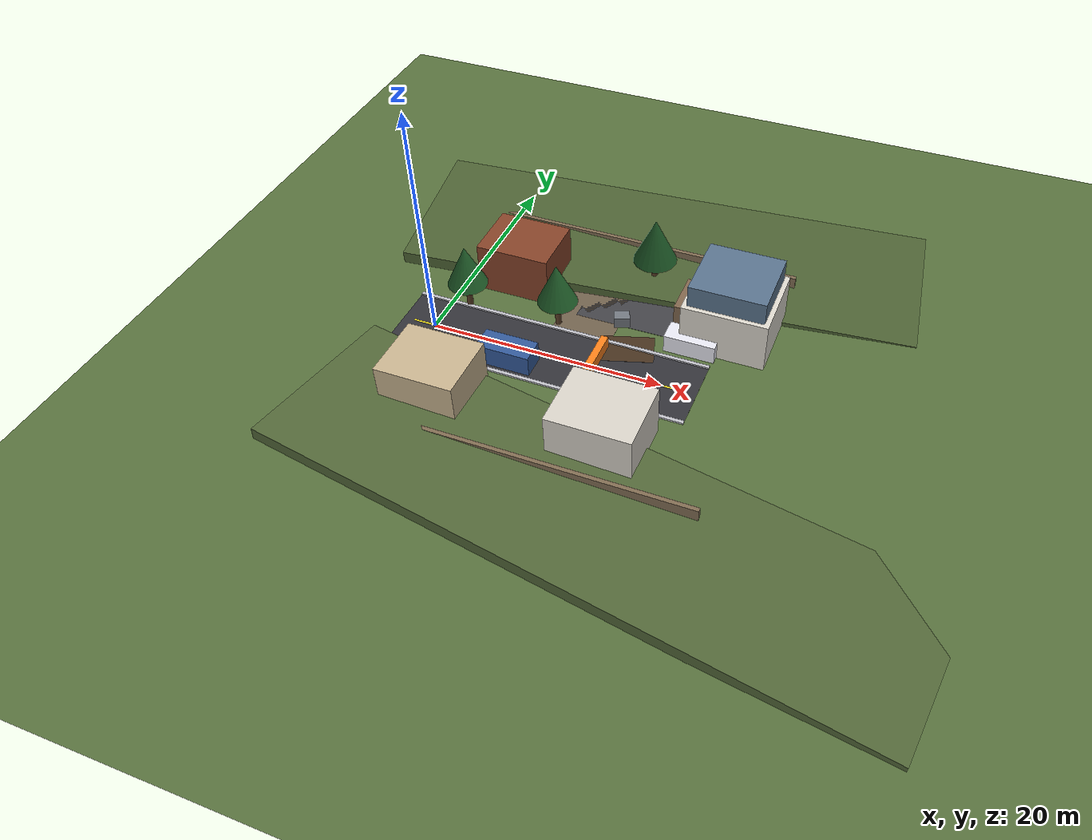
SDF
<sdf version="1.8">
 <world name="real_digital_twin_world">
  <physics name="1ms" type="ode">
   <max_step_size>0.004</max_step_size>
   <real_time_factor>1.0</real_time_factor>
   <real_time_update_rate>250</real_time_update_rate>
   <ode>
    <solver><type>quick</type><iters>60</iters><sor>1.3</sor></solver>
    <constraints>
     <cfm>0.00001</cfm>
     <erp>0.2</erp>
     <contact_max_correcting_vel>100.0</contact_max_correcting_vel>
     <contact_surface_layer>0.001</contact_surface_layer>
    </constraints>
   </ode>
  </physics>
  <plugin filename="gz-sim-physics-system" name="gz::sim::systems::Physics"/>
  <plugin filename="gz-sim-user-commands-system" name="gz::sim::systems::UserCommands"/>
  <plugin filename="gz-sim-scene-broadcaster-system" name="gz::sim::systems::SceneBroadcaster"/>
  <plugin filename="gz-sim-sensors-system" name="gz::sim::systems::Sensors">
   <render_engine>ogre</render_engine>
  </plugin>
  <plugin filename="gz-sim-imu-system" name="gz::sim::systems::Imu"/>
  <scene>
   <ambient>0.65 0.70 0.75 1.0</ambient>
   <background>0.55 0.75 0.92 1.0</background>
   <shadows>true</shadows>
   <grid>false</grid>
  </scene>
  <light type="directional" name="sun">
   <pose>25 35 60 0 0.75 0.55</pose>
   <diffuse>0.98 0.95 0.88 1.0</diffuse>
   <specular>0.45 0.45 0.45 1.0</specular>
   <direction>-0.5 0.3 -0.9</direction>
  </light>
  <model name="base_terrain_500m">
   <static>true</static>
   <link name="link">
    <collision name="col">
     <geometry><plane><normal>0 0 1</normal><size>500 500</size></plane></geometry>
     <surface><friction><ode><mu>0.55</mu><mu2>0.45</mu2></ode></friction></surface>
    </collision>
    <visual name="vis">
     <geometry><plane><normal>0 0 1</normal><size>500 500</size></plane></geometry>
     <material><ambient>0.30 0.38 0.20 1.0</ambient><diffuse>0.34 0.44 0.24 1.0</diffuse></material>
    </visual>
   </link>
  </model>
  <model name="elevation_hill_north">
   <static>true</static>
   <pose>15.0 16.0 0.55 0.06 0.03 0.12</pose>
   <link name="link">
    <collision name="col">
     <geometry><box><size>45.0 14.0 1.1</size></box></geometry>
     <surface><friction><ode><mu>0.50</mu><mu2>0.40</mu2></ode></friction></surface>
    </collision>
    <visual name="vis">
     <geometry><box><size>45.0 14.0 1.1</size></box></geometry>
     <material><ambient>0.26 0.34 0.18 1.0</ambient><diffuse>0.30 0.38 0.20 1.0</diffuse></material>
    </visual>
   </link>
  </model>
  <model name="elevation_ridge_south">
   <static>true</static>
   <pose>20.0 -14.0 0.50 -0.05 0.04 -0.15</pose>
   <link name="link">
    <collision name="col">
     <geometry><box><size>50.0 14.0 1.0</size></box></geometry>
     <surface><friction><ode><mu>0.50</mu><mu2>0.40</mu2></ode></friction></surface>
    </collision>
    <visual name="vis">
     <geometry><box><size>50.0 14.0 1.0</size></box></geometry>
     <material><ambient>0.28 0.36 0.20 1.0</ambient><diffuse>0.32 0.40 0.22 1.0</diffuse></material>
    </visual>
   </link>
  </model>
  <model name="mud_patch_offroad">
   <static>true</static>
   <pose>16.0 3.0 0.015 0 0 0.3</pose>
   <link name="link">
    <collision name="col">
     <geometry><box><size>4.5 3.0 0.03</size></box></geometry>
     <surface><friction><ode><mu>0.35</mu><mu2>0.25</mu2></ode></friction></surface>
    </collision>
    <visual name="vis">
     <geometry><box><size>4.5 3.0 0.03</size></box></geometry>
     <material><ambient>0.22 0.16 0.10 1.0</ambient><diffuse>0.28 0.20 0.12 1.0</diffuse></material>
    </visual>
   </link>
  </model>
  <model name="main_asphalt_road">
   <static>true</static>
   <pose>10.0 0.0 0.01 0 0 0</pose>
   <link name="link">
    <collision name="col">
     <geometry><box><size>26.0 6.2 0.02</size></box></geometry>
     <surface><friction><ode><mu>0.90</mu><mu2>0.80</mu2></ode></friction></surface>
    </collision>
    <visual name="vis">
     <geometry><box><size>26.0 6.2 0.02</size></box></geometry>
     <material><ambient>0.16 0.16 0.18 1.0</ambient><diffuse>0.20 0.20 0.22 1.0</diffuse></material>
    </visual>
   </link>
  </model>
  <model name="road_centerline_double_yellow">
   <static>true</static>
   <pose>10.0 0.0 0.025 0 0 0</pose>
   <link name="link">
    <visual name="vis">
     <geometry><box><size>24.0 0.18 0.005</size></box></geometry>
     <material><ambient>0.95 0.85 0.10 1.0</ambient><diffuse>0.98 0.90 0.12 1.0</diffuse></material>
    </visual>
   </link>
  </model>
  <model name="concrete_curb_north">
   <static>true</static>
   <pose>10.0 3.25 0.08 0 0 0</pose>
   <link name="link">
    <collision name="col">
     <geometry><box><size>26.0 0.30 0.16</size></box></geometry>
     <surface><friction><ode><mu>0.85</mu><mu2>0.75</mu2></ode></friction></surface>
    </collision>
    <visual name="vis">
     <geometry><box><size>26.0 0.30 0.16</size></box></geometry>
     <material><ambient>0.70 0.70 0.72 1.0</ambient><diffuse>0.75 0.75 0.78 1.0</diffuse></material>
    </visual>
   </link>
  </model>
  <model name="concrete_curb_south">
   <static>true</static>
   <pose>10.0 -3.25 0.08 0 0 0</pose>
   <link name="link">
    <collision name="col">
     <geometry><box><size>26.0 0.30 0.16</size></box></geometry>
     <surface><friction><ode><mu>0.85</mu><mu2>0.75</mu2></ode></friction></surface>
    </collision>
    <visual name="vis">
     <geometry><box><size>26.0 0.30 0.16</size></box></geometry>
     <material><ambient>0.70 0.70 0.72 1.0</ambient><diffuse>0.75 0.75 0.78 1.0</diffuse></material>
    </visual>
   </link>
  </model>
  <model name="north_crossroad_gravel">
   <static>true</static>
   <pose>11.8 5.5 0.01 0 0 1.5708</pose>
   <link name="link">
    <collision name="col">
     <geometry><box><size>11.0 5.2 0.02</size></box></geometry>
     <surface><friction><ode><mu>0.60</mu><mu2>0.50</mu2></ode></friction></surface>
    </collision>
    <visual name="vis">
     <geometry><box><size>11.0 5.2 0.02</size></box></geometry>
     <material><ambient>0.38 0.34 0.26 1.0</ambient><diffuse>0.44 0.38 0.30 1.0</diffuse></material>
    </visual>
   </link>
  </model>
  <model name="east_sector_road">
   <static>true</static>
   <pose>17.5 8.0 0.01 0 0 0</pose>
   <link name="link">
    <collision name="col">
     <geometry><box><size>14.0 5.0 0.02</size></box></geometry>
     <surface><friction><ode><mu>0.85</mu><mu2>0.75</mu2></ode></friction></surface>
    </collision>
    <visual name="vis">
     <geometry><box><size>14.0 5.0 0.02</size></box></geometry>
     <material><ambient>0.22 0.22 0.24 1.0</ambient><diffuse>0.26 0.26 0.28 1.0</diffuse></material>
    </visual>
   </link>
  </model>
  <model name="digital_twin_estate_1">
   <static>true</static>
   <pose>23.5 8.0 0.0 0 0 0</pose>
   <link name="ground_floor">
    <pose>0 0 2.2 0 0 0</pose>
    <collision name="col"><geometry><box><size>7.2 6.8 4.4</size></box></geometry></collision>
    <visual name="vis">
     <geometry><box><size>7.2 6.8 4.4</size></box></geometry>
     <material><ambient>0.82 0.80 0.76 1.0</ambient><diffuse>0.86 0.84 0.80 1.0</diffuse></material>
    </visual>
   </link>
   <link name="upper_floor">
    <pose>0 0 5.2 0 0 0</pose>
    <collision name="col"><geometry><box><size>6.4 6.0 2.2</size></box></geometry></collision>
    <visual name="vis">
     <geometry><box><size>6.4 6.0 2.2</size></box></geometry>
     <material><ambient>0.30 0.40 0.50 1.0</ambient><diffuse>0.35 0.45 0.55 1.0</diffuse></material>
    </visual>
   </link>
   <link name="entry_porch">
    <pose>-4.0 0 1.5 0 0 0</pose>
    <collision name="col"><geometry><box><size>1.2 3.8 3.0</size></box></geometry></collision>
    <visual name="vis">
     <geometry><box><size>1.2 3.8 3.0</size></box></geometry>
     <material><ambient>0.45 0.35 0.25 1.0</ambient><diffuse>0.50 0.40 0.30 1.0</diffuse></material>
    </visual>
   </link>
  </model>
  <model name="farmhouse_south_1">
   <static>true</static>
   <pose>4.0 -7.5 2.2 0 0 0</pose>
   <link name="body">
    <collision name="col"><geometry><box><size>6.5 5.5 4.4</size></box></geometry></collision>
    <visual name="vis">
     <geometry><box><size>6.5 5.5 4.4</size></box></geometry>
     <material><ambient>0.74 0.65 0.52 1.0</ambient><diffuse>0.78 0.70 0.56 1.0</diffuse></material>
    </visual>
   </link>
  </model>
  <model name="farmhouse_south_2">
   <static>true</static>
   <pose>18.0 -7.5 2.2 0 0 0</pose>
   <link name="body">
    <collision name="col"><geometry><box><size>6.8 5.8 4.4</size></box></geometry></collision>
    <visual name="vis">
     <geometry><box><size>6.8 5.8 4.4</size></box></geometry>
     <material><ambient>0.80 0.78 0.74 1.0</ambient><diffuse>0.84 0.82 0.78 1.0</diffuse></material>
    </visual>
   </link>
  </model>
  <model name="barn_northwest">
   <static>true</static>
   <pose>4.5 8.5 2.2 0 0 0</pose>
   <link name="body">
    <collision name="col"><geometry><box><size>6.4 5.2 4.4</size></box></geometry></collision>
    <visual name="vis">
     <geometry><box><size>6.4 5.2 4.4</size></box></geometry>
     <material><ambient>0.48 0.22 0.12 1.0</ambient><diffuse>0.52 0.26 0.16 1.0</diffuse></material>
    </visual>
   </link>
  </model>
  <model name="roadblock_barricade_x14">
   <static>true</static>
   <pose>14.2 0.0 0.55 0 0 0</pose>
   <link name="link">
    <collision name="col"><geometry><box><size>0.6 5.4 1.1</size></box></geometry></collision>
    <visual name="vis">
     <geometry><box><size>0.6 5.4 1.1</size></box></geometry>
     <material><ambient>0.95 0.45 0.05 1.0</ambient><diffuse>0.98 0.50 0.10 1.0</diffuse></material>
    </visual>
   </link>
  </model>
  <model name="parked_pickup_truck">
   <static>true</static>
   <pose>7.5 -1.7 0.9 0 0 0</pose>
   <link name="body">
    <collision name="col">
     <geometry><box><size>4.6 2.1 1.8</size></box></geometry>
     <surface><friction><ode><mu>0.65</mu><mu2>0.55</mu2></ode></friction></surface>
    </collision>
    <visual name="vis">
     <geometry><box><size>4.6 2.1 1.8</size></box></geometry>
     <material><ambient>0.15 0.28 0.50 1.0</ambient><diffuse>0.20 0.35 0.60 1.0</diffuse></material>
    </visual>
   </link>
  </model>
  <model name="parked_civilian_sedan">
   <static>true</static>
   <pose>21.0 4.8 0.85 0 0 0</pose>
   <link name="body">
    <collision name="col"><geometry><box><size>4.3 1.9 1.6</size></box></geometry></collision>
    <visual name="vis">
     <geometry><box><size>4.3 1.9 1.6</size></box></geometry>
     <material><ambient>0.85 0.85 0.88 1.0</ambient><diffuse>0.90 0.90 0.94 1.0</diffuse></material>
    </visual>
   </link>
  </model>
  <model name="pine_tree_cluster_1">
   <static>true</static>
   <pose>1.5 3.5 0 0 0 0</pose>
   <link name="trunk">
    <pose>0 0 1.5 0 0 0</pose>
    <collision name="col">
     <geometry><cylinder><radius>0.26</radius><length>3.0</length></cylinder></geometry>
    </collision>
    <visual name="vis">
     <geometry><cylinder><radius>0.26</radius><length>3.0</length></cylinder></geometry>
     <material><ambient>0.30 0.20 0.12 1.0</ambient><diffuse>0.35 0.24 0.15 1.0</diffuse></material>
    </visual>
   </link>
   <link name="foliage">
    <pose>0 0 4.2 0 0 0</pose>
    <visual name="vis">
     <geometry><cone><radius>1.7</radius><length>3.6</length></cone></geometry>
     <material><ambient>0.10 0.32 0.14 1.0</ambient><diffuse>0.14 0.40 0.18 1.0</diffuse></material>
    </visual>
   </link>
  </model>
  <model name="pine_tree_cluster_2">
   <static>true</static>
   <pose>9.5 4.0 0 0 0 0</pose>
   <link name="trunk">
    <pose>0 0 1.5 0 0 0</pose>
    <collision name="col">
     <geometry><cylinder><radius>0.26</radius><length>3.0</length></cylinder></geometry>
    </collision>
    <visual name="vis">
     <geometry><cylinder><radius>0.26</radius><length>3.0</length></cylinder></geometry>
     <material><ambient>0.30 0.20 0.12 1.0</ambient><diffuse>0.35 0.24 0.15 1.0</diffuse></material>
    </visual>
   </link>
   <link name="foliage">
    <pose>0 0 4.2 0 0 0</pose>
    <visual name="vis">
     <geometry><cone><radius>1.7</radius><length>3.6</length></cone></geometry>
     <material><ambient>0.10 0.32 0.14 1.0</ambient><diffuse>0.14 0.40 0.18 1.0</diffuse></material>
    </visual>
   </link>
  </model>
  <model name="pine_tree_cluster_3">
   <static>true</static>
   <pose>15.2 12.0 0 0 0 0</pose>
   <link name="trunk">
    <pose>0 0 1.5 0 0 0</pose>
    <collision name="col">
     <geometry><cylinder><radius>0.28</radius><length>3.0</length></cylinder></geometry>
    </collision>
    <visual name="vis">
     <geometry><cylinder><radius>0.28</radius><length>3.0</length></cylinder></geometry>
     <material><ambient>0.30 0.20 0.12 1.0</ambient><diffuse>0.35 0.24 0.15 1.0</diffuse></material>
    </visual>
   </link>
   <link name="foliage">
    <pose>0 0 4.5 0 0 0</pose>
    <visual name="vis">
     <geometry><cone><radius>1.9</radius><length>4.0</length></cone></geometry>
     <material><ambient>0.08 0.30 0.12 1.0</ambient><diffuse>0.12 0.36 0.16 1.0</diffuse></material>
    </visual>
   </link>
  </model>
  <model name="granite_boulder_outcrop">
   <static>true</static>
   <pose>14.5 5.8 0.50 0 0 0.4</pose>
   <link name="link">
    <collision name="col"><geometry><box><size>1.3 1.0 1.0</size></box></geometry></collision>
    <visual name="vis">
     <geometry><box><size>1.3 1.0 1.0</size></box></geometry>
     <material><ambient>0.38 0.40 0.42 1.0</ambient><diffuse>0.45 0.47 0.50 1.0</diffuse></material>
    </visual>
   </link>
  </model>
  <model name="perimeter_wall_north">
   <static>true</static>
   <pose>12.0 15.0 0.8 0 0 0</pose>
   <link name="link">
    <collision name="col"><geometry><box><size>30.0 0.35 1.6</size></box></geometry></collision>
    <visual name="vis">
     <geometry><box><size>30.0 0.35 1.6</size></box></geometry>
     <material><ambient>0.45 0.38 0.28 1.0</ambient><diffuse>0.50 0.42 0.32 1.0</diffuse></material>
    </visual>
   </link>
  </model>
  <model name="perimeter_wall_south">
   <static>true</static>
   <pose>12.0 -12.0 0.8 0 0 0</pose>
   <link name="link">
    <collision name="col"><geometry><box><size>30.0 0.35 1.6</size></box></geometry></collision>
    <visual name="vis">
     <geometry><box><size>30.0 0.35 1.6</size></box></geometry>
     <material><ambient>0.45 0.38 0.28 1.0</ambient><diffuse>0.50 0.42 0.32 1.0</diffuse></material>
    </visual>
   </link>
  </model>
 </world>
</sdf>
